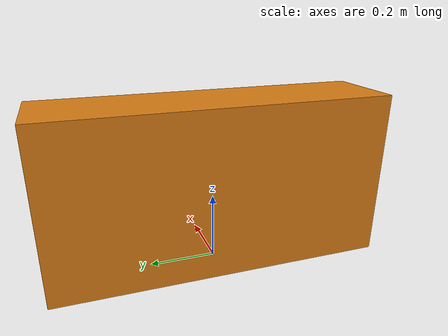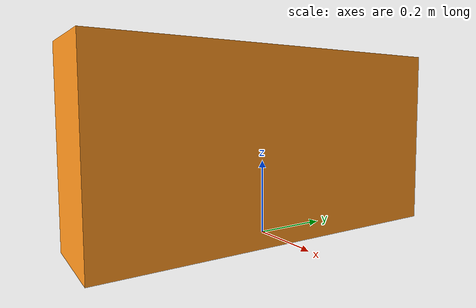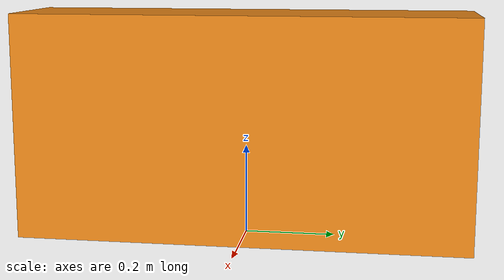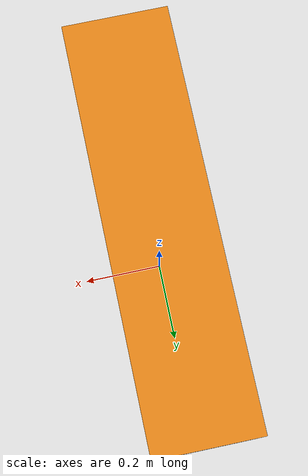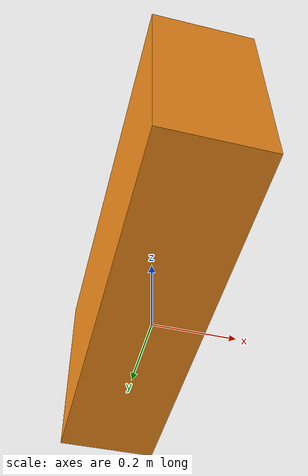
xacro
<?xml version="1.0"?>
<robot xmlns:xacro="http://wiki.ros.org/xacro" name="benchbot_scene">
    <link name="world"/>
    <link name="table">
        <inertial>
            <origin xyz="0.0 0.0 0.0" rpy="0.0 0.0 0.0"/>
            <mass value="0.0"/>
            <inertia ixx="0.0" ixy="0.0" ixz="0.0" iyy="0.0" iyz="0.0" izz="0.0"/>
        </inertial>
        <visual>
            <origin xyz="0.0 0.0 0.0" rpy="0.0 0.0 0.0"/>
            <geometry>
                <box size="0.25 1 0.5"/>
            </geometry>

        </visual>
        <collision>
            <origin xyz="0.0 0.0 0.0" rpy="0.0 0.0 0.0"/>
            <geometry>
                <box size="0.25 1 0.5"/>
            </geometry>
        </collision>
    </link>
    <joint name="table_joint" type="fixed">
        <origin xyz="0.0 0.0 .25" rpy="0.0 0.0 0.0"/>
        <parent link="world"/>
        <child link="table"/>
    </joint>
    <gazebo reference="table">
        <mu1>0.2</mu1>
        <mu2>0.2</mu2>
        <material>Gazebo/Orange</material>
    </gazebo>

</robot>
